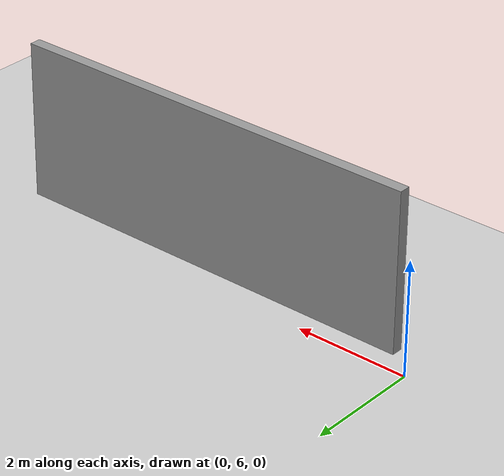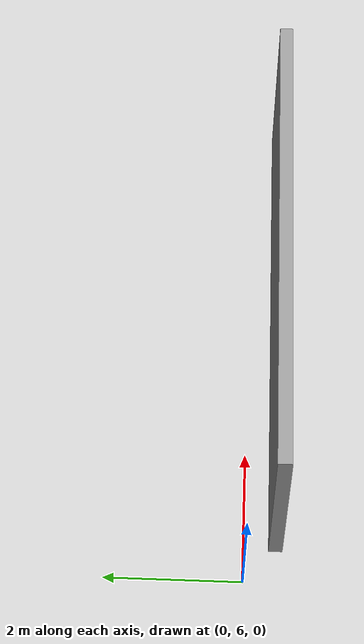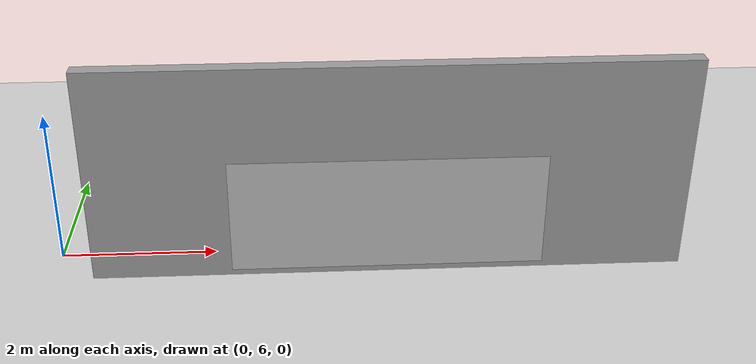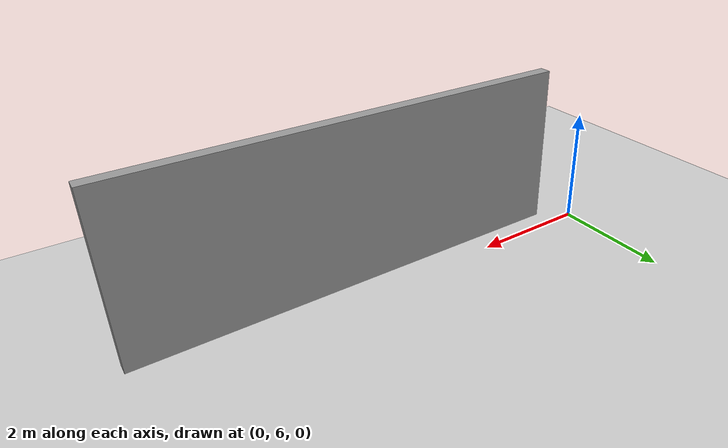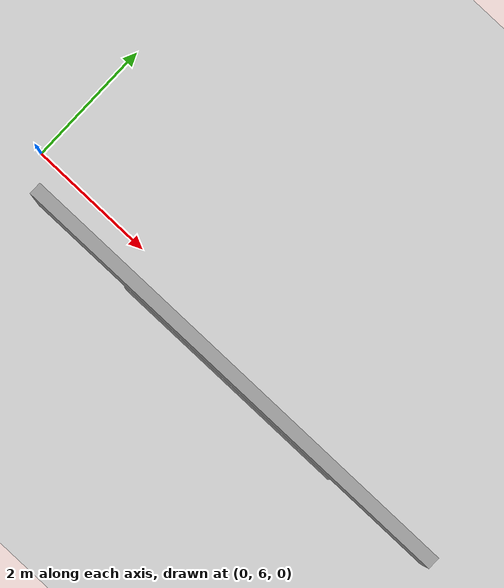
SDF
<sdf version="1.7">
 <world name="default">
  <light name="sun" type="directional">
   <pose>0 0 10 0 -0 0</pose>
   <diffuse>0.8 0.8 0.8 1</diffuse>
   <specular>0.2 0.2 0.2 1</specular>
   <attenuation>
    <range>1000</range>
    <constant>0.9</constant>
    <linear>0.01</linear>
    <quadratic>0.001</quadratic>
   </attenuation>
   <direction>-0.5 0.1 -0.9</direction>
   <spot><inner_angle>0</inner_angle><outer_angle>0</outer_angle><falloff>0</falloff></spot>
  </light>
  <model name="ground_plane">
   <static>1</static>
   <link name="link">
    <collision name="collision">
     <geometry><plane><normal>0 0 1</normal><size>100 100</size></plane></geometry>
     <surface><friction><ode><mu>100</mu><mu2>50</mu2></ode></friction></surface>
    </collision>
    <visual name="visual">
     <cast_shadows>0</cast_shadows>
     <geometry><plane><normal>0 0 1</normal><size>100 100</size></plane></geometry>
     <material>
      <script><uri>file://media/materials/scripts/gazebo.material</uri><name>Gazebo/Grey</name></script>
     </material>
    </visual>
   </link>
  </model>
  <gravity>0 0 -9.8</gravity>
  <magnetic_field>6e-06 2.3e-05 -4.2e-05</magnetic_field>
  <atmosphere type="adiabatic"/>
  <physics type="ode">
   <max_step_size>0.001</max_step_size>
   <real_time_factor>1</real_time_factor>
   <real_time_update_rate>1000</real_time_update_rate>
  </physics>
  <scene><ambient>0.4 0.4 0.4 1</ambient><background>0.7 0.7 0.7 1</background><shadows>1</shadows></scene>
  <audio><device>default</device></audio>
  <spherical_coordinates>
   <surface_model>EARTH_WGS84</surface_model>
   <latitude_deg>0</latitude_deg>
   <longitude_deg>0</longitude_deg>
   <elevation>0</elevation>
   <heading_deg>0</heading_deg>
  </spherical_coordinates>
  <light name="user_point_light_0" type="point">
   <pose>6.16124 -1.98277 1 0 -0 0</pose>
   <diffuse>0.5 0.5 0.5 1</diffuse>
   <specular>0.1 0.1 0.1 1</specular>
   <attenuation>
    <range>20</range>
    <constant>0.5</constant>
    <linear>0.01</linear>
    <quadratic>0.001</quadratic>
   </attenuation>
   <cast_shadows>0</cast_shadows>
   <direction>0 0 -1</direction>
   <spot><inner_angle>0</inner_angle><outer_angle>0</outer_angle><falloff>0</falloff></spot>
  </light>
  <model name="pano_frame">
   <static>1</static>
   <link name="robot_link">
    <collision name="body_collision"><geometry><box><size>3.949 0.01 1.5</size></box></geometry></collision>
    <visual name="body_visual">
     <geometry><box><size>3.949 0.01 1.5</size></box></geometry>
     <material>
      <script>
       <uri>model://panoframe/materials/scripts/</uri>
       <uri>model://panoframe/materials/textures/</uri>
       <name>RepeatedTexture_pano</name>
      </script>
     </material>
    </visual>
   </link>
   <pose>4.21174 5.41738 0.83768 0 -0 0</pose>
  </model>
  <model name="my_grey_wall">
   <static>1</static>
   <link name="link">
    <pose>0 0 1.4 0 -0 0</pose>
    <collision name="collision"><geometry><box><size>7.5 0.2 2.8</size></box></geometry></collision>
    <visual name="visual">
     <cast_shadows>0</cast_shadows>
     <geometry><box><size>7.5 0.2 2.8</size></box></geometry>
     <material>
      <script>
       <uri>model://my_grey_wall/materials/scripts</uri>
       <uri>model://my_grey_wall/materials/textures</uri>
       <name>my_grey_wall</name>
      </script>
     </material>
    </visual>
   </link>
   <pose>4.23324 5.54007 0 0 -0 0</pose>
  </model>
 </world>
</sdf>
